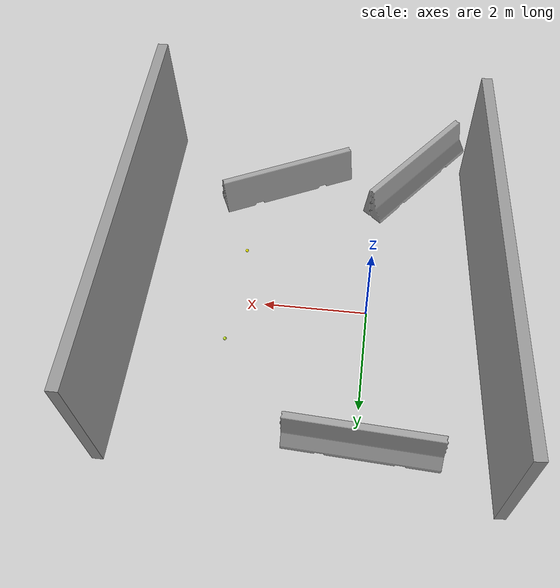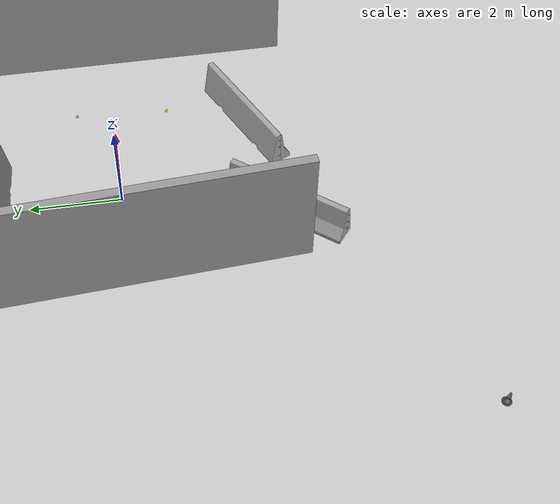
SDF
<sdf version="1.6">
 <world name="default">
  <scene><ambient>0.4 0.4 0.4 1</ambient><background>0.25 0.25 0.25 1</background><shadows>0</shadows></scene>
  <light name="some_light" type="directional">
   <diffuse>0.7 0.7 0.7 0</diffuse>
   <specular>1 1 1 0</specular>
   <direction>-1 -1 -1</direction>
  </light>
  <gravity>0 0 -9.8</gravity>
  <magnetic_field>6e-06 2.3e-05 -4.2e-05</magnetic_field>
  <atmosphere type="adiabatic"/>
  <physics name="default_physics" default="0" type="ode">
   <max_step_size>0.01</max_step_size>
   <real_time_factor>1</real_time_factor>
   <real_time_update_rate>100</real_time_update_rate>
  </physics>
  <spherical_coordinates>
   <surface_model>EARTH_WGS84</surface_model>
   <latitude_deg>0</latitude_deg>
   <longitude_deg>0</longitude_deg>
   <elevation>0</elevation>
   <heading_deg>0</heading_deg>
  </spherical_coordinates>
  <model name="ground_plane">
   <static>1</static>
   <link name="link">
    <collision name="collision">
     <geometry><plane><normal>0 0 1</normal><size>100 100</size></plane></geometry>
     <surface>
      <contact><collide_bitmask>65535</collide_bitmask></contact>
      <friction><ode><mu>100</mu><mu2>50</mu2></ode></friction>
     </surface>
    </collision>
    <visual name="visual">
     <cast_shadows>0</cast_shadows>
     <geometry><plane><normal>0 0 1</normal><size>100 100</size></plane></geometry>
     <material>
      <script><uri>file://media/materials/scripts/gazebo.material</uri><name>Gazebo/Grey</name></script>
     </material>
    </visual>
   </link>
   <pose>0.00724 -0.006209 0 0 -0 0</pose>
  </model>
  <model name="grey_wall">
   <static>1</static>
   <link name="link">
    <pose>0 0 1.4 0 -0 0</pose>
    <collision name="collision"><geometry><box><size>7.5 0.2 2.8</size></box></geometry></collision>
    <visual name="visual">
     <cast_shadows>0</cast_shadows>
     <geometry><box><size>7.5 0.2 2.8</size></box></geometry>
     <material>
      <script>
       <uri>model://grey_wall/materials/scripts</uri>
       <uri>model://grey_wall/materials/textures</uri>
       <name>vrc/grey_wall</name>
      </script>
     </material>
    </visual>
   </link>
   <pose>-2.19668 -0.073112 0 0 0 -1.49736</pose>
  </model>
  <model name="grey_wall_0">
   <static>1</static>
   <link name="link">
    <pose>0 0 1.4 0 -0 0</pose>
    <collision name="collision"><geometry><box><size>7.5 0.2 2.8</size></box></geometry></collision>
    <visual name="visual">
     <cast_shadows>0</cast_shadows>
     <geometry><box><size>7.5 0.2 2.8</size></box></geometry>
     <material>
      <script>
       <uri>model://grey_wall/materials/scripts</uri>
       <uri>model://grey_wall/materials/textures</uri>
       <name>vrc/grey_wall</name>
      </script>
     </material>
    </visual>
   </link>
   <pose>4.45829 -0.385503 0 0 -0 1.57909</pose>
  </model>
  <model name="road_barricade">
   <static>0</static>
   <link name="ball">
    <pose>0 0 0.1 0 -0 0</pose>
    <collision name="collision">
     <geometry><mesh><uri>model://road_barricade/road_barricade.dae</uri><scale>1 1 1</scale></mesh></geometry>
     <surface>
      <bounce><restitution_coefficient>0.2</restitution_coefficient><threshold>100</threshold></bounce>
      <contact><ode><max_vel>10</max_vel></ode></contact>
     </surface>
    </collision>
    <visual name="visual">
     <geometry><mesh><uri>model://road_barricade/road_barricade.dae</uri><scale>1 1 1</scale></mesh></geometry>
    </visual>
    <inertial>
     <mass>200</mass>
     <inertia>
      <ixx>0.075021</ixx>
      <ixy>3e-06</ixy>
      <ixz>-2.9e-05</ixz>
      <iyy>0.89513</iyy>
      <iyz>-0.00631</iyz>
      <izz>0.847779</izz>
     </inertia>
    </inertial>
   </link>
   <pose>-0.099282 2.68149 -0.100006 8.4e-05 3.9e-05 3.08778</pose>
  </model>
  <model name="road_barricade_0">
   <static>0</static>
   <link name="ball">
    <pose>0 0 0.1 0 -0 0</pose>
    <collision name="collision">
     <geometry><mesh><uri>model://road_barricade/road_barricade.dae</uri><scale>1 1 1</scale></mesh></geometry>
     <surface>
      <bounce><restitution_coefficient>0.2</restitution_coefficient><threshold>100</threshold></bounce>
      <contact><ode><max_vel>10</max_vel></ode></contact>
     </surface>
    </collision>
    <visual name="visual">
     <geometry><mesh><uri>model://road_barricade/road_barricade.dae</uri><scale>1 1 1</scale></mesh></geometry>
    </visual>
    <inertial>
     <mass>200</mass>
     <inertia>
      <ixx>0.075021</ixx>
      <ixy>3e-06</ixy>
      <ixz>-2.9e-05</ixz>
      <iyy>0.89513</iyy>
      <iyz>-0.00631</iyz>
      <izz>0.847779</izz>
     </inertia>
    </inertial>
   </link>
   <pose>1.9207 -3.00636 -0.100006 8.4e-05 3.9e-05 0.438687</pose>
  </model>
  <model name="road_barricade_1">
   <static>0</static>
   <link name="ball">
    <pose>0 0 0.1 0 -0 0</pose>
    <collision name="collision">
     <geometry><mesh><uri>model://road_barricade/road_barricade.dae</uri><scale>1 1 1</scale></mesh></geometry>
     <surface>
      <bounce><restitution_coefficient>0.2</restitution_coefficient><threshold>100</threshold></bounce>
      <contact><ode><max_vel>10</max_vel></ode></contact>
     </surface>
    </collision>
    <visual name="visual">
     <geometry><mesh><uri>model://road_barricade/road_barricade.dae</uri><scale>1 1 1</scale></mesh></geometry>
    </visual>
    <inertial>
     <mass>200</mass>
     <inertia>
      <ixx>0.075021</ixx>
      <ixy>3e-06</ixy>
      <ixz>-2.9e-05</ixz>
      <iyy>0.89513</iyy>
      <iyz>-0.00631</iyz>
      <izz>0.847779</izz>
     </inertia>
    </inertial>
   </link>
   <pose>-0.835158 -3.47822 -0.100013 0.00027 -6.3e-05 -2.24541</pose>
  </model>
  <model name="road_barricade_2">
   <static>0</static>
   <link name="ball">
    <pose>0 0 0.1 0 -0 0</pose>
    <collision name="collision">
     <geometry><mesh><uri>model://road_barricade/road_barricade.dae</uri><scale>1 1 1</scale></mesh></geometry>
     <surface>
      <bounce><restitution_coefficient>0.2</restitution_coefficient><threshold>100</threshold></bounce>
      <contact><ode><max_vel>10</max_vel></ode></contact>
     </surface>
    </collision>
    <visual name="visual">
     <geometry><mesh><uri>model://road_barricade/road_barricade.dae</uri><scale>1 1 1</scale></mesh></geometry>
    </visual>
    <inertial>
     <mass>200</mass>
     <inertia>
      <ixx>0.075021</ixx>
      <ixy>3e-06</ixy>
      <ixz>-2.9e-05</ixz>
      <iyy>0.89513</iyy>
      <iyz>-0.00631</iyz>
      <izz>0.847779</izz>
     </inertia>
    </inertial>
   </link>
   <pose>27.1668 24.1436 -0.100006 8.4e-05 3.9e-05 2.31542</pose>
  </model>
  <model name="tennis_green">
   <static>0</static>
   <link name="ball">
    <pose>0 0 1 0 -0 0</pose>
    <collision name="collision">
     <geometry><mesh><uri>model://tennis_green/tennis_green.dae</uri><scale>1 1 1</scale></mesh></geometry>
     <surface>
      <bounce><restitution_coefficient>0.725</restitution_coefficient><threshold>0</threshold></bounce>
      <contact><ode><max_vel>10</max_vel></ode></contact>
     </surface>
    </collision>
    <visual name="visual">
     <geometry><mesh><uri>model://tennis_green/tennis_green.dae</uri><scale>1 1 1</scale></mesh></geometry>
    </visual>
    <inertial>
     <mass>0.055</mass>
     <inertia><ixx>5.19527</ixx><ixy>0</ixy><ixz>0</ixz><iyy>5.15681</iyy><iyz>0</iyz><izz>5.15681</izz></inertia>
    </inertial>
   </link>
   <pose>-13.4777 -13.123 0.561473 -3.09829 1.03201 -2.99384</pose>
  </model>
  <model name="tennis_lime">
   <static>0</static>
   <link name="ball">
    <pose>0 0 1 0 -0 0</pose>
    <collision name="collision">
     <geometry><mesh><uri>model://tennis_lime/tennis_lime.dae</uri><scale>1 1 1</scale></mesh></geometry>
     <surface>
      <bounce><restitution_coefficient>0.725</restitution_coefficient><threshold>0</threshold></bounce>
      <contact><ode><max_vel>10</max_vel></ode></contact>
     </surface>
    </collision>
    <visual name="visual">
     <geometry><mesh><uri>model://tennis_lime/tennis_lime.dae</uri><scale>1 1 1</scale></mesh></geometry>
    </visual>
    <inertial>
     <mass>0.055</mass>
     <inertia><ixx>5.19527</ixx><ixy>0</ixy><ixz>0</ixz><iyy>5.15681</iyy><iyz>0</iyz><izz>5.15681</izz></inertia>
    </inertial>
   </link>
   <pose>2.64312 0.834294 -1.00135 0 -0.002741 0</pose>
  </model>
  <model name="tennis_yellow">
   <static>0</static>
   <link name="ball">
    <pose>0 0 1 0 -0 0</pose>
    <collision name="collision">
     <geometry><mesh><uri>model://tennis_yellow/tennis_yellow.dae</uri><scale>1 1 1</scale></mesh></geometry>
     <surface>
      <bounce><restitution_coefficient>0.725</restitution_coefficient><threshold>0</threshold></bounce>
      <contact><ode><max_vel>10</max_vel></ode></contact>
     </surface>
    </collision>
    <visual name="visual">
     <geometry><mesh><uri>model://tennis_yellow/tennis_yellow.dae</uri><scale>1 1 1</scale></mesh></geometry>
    </visual>
    <inertial>
     <mass>0.055</mass>
     <inertia><ixx>5.19527</ixx><ixy>0</ixy><ixz>0</ixz><iyy>5.15681</iyy><iyz>0</iyz><izz>5.15681</izz></inertia>
    </inertial>
   </link>
   <pose>2.53938 -1.22256 -1.00135 0 -0.002753 0</pose>
  </model>
  <model name="pylon">
   <static>0</static>
   <link name="ball">
    <pose>0 0 0.1 1.5708 -0 0</pose>
    <collision name="collision">
     <geometry><mesh><uri>model://pylon/pylon.dae</uri><scale>1 1 1</scale></mesh></geometry>
    </collision>
    <visual name="visual">
     <geometry><mesh><uri>model://pylon/pylon.dae</uri><scale>1 1 1</scale></mesh></geometry>
    </visual>
    <inertial>
     <mass>4.5</mass>
     <inertia><ixx>1</ixx><ixy>0</ixy><ixz>0</ixz><iyy>1</iyy><iyz>0</iyz><izz>1</izz></inertia>
    </inertial>
   </link>
   <pose>-31.6054 9.69205 0.093145 -1.88535 0.145174 2.23827</pose>
  </model>
  <model name="pylon_0">
   <static>0</static>
   <link name="ball">
    <pose>0 0 0.1 1.5708 -0 0</pose>
    <collision name="collision">
     <geometry><mesh><uri>model://pylon/pylon.dae</uri><scale>1 1 1</scale></mesh></geometry>
    </collision>
    <visual name="visual">
     <geometry><mesh><uri>model://pylon/pylon.dae</uri><scale>1 1 1</scale></mesh></geometry>
    </visual>
    <inertial>
     <mass>4.5</mass>
     <inertia><ixx>1</ixx><ixy>0</ixy><ixz>0</ixz><iyy>1</iyy><iyz>0</iyz><izz>1</izz></inertia>
    </inertial>
   </link>
   <pose>-6.09905 -6.778 0.093482 -1.91441 0.426302 -2.41209</pose>
  </model>
  <model name="golf_ball">
   <static>0</static>
   <link name="ball">
    <pose>0 0 0.1 0 -0 0</pose>
    <collision name="collision">
     <geometry><mesh><uri>model://golf_ball/golf_ball.dae</uri><scale>1 1 1</scale></mesh></geometry>
     <surface>
      <bounce><restitution_coefficient>0.725</restitution_coefficient><threshold>0</threshold></bounce>
      <contact><ode><max_vel>10</max_vel></ode></contact>
     </surface>
    </collision>
    <visual name="visual">
     <geometry><mesh><uri>model://golf_ball/golf_ball.dae</uri><scale>1 1 1</scale></mesh></geometry>
    </visual>
    <inertial>
     <mass>0.055</mass>
     <inertia><ixx>5.19527</ixx><ixy>0</ixy><ixz>0</ixz><iyy>5.15681</iyy><iyz>0</iyz><izz>5.15681</izz></inertia>
    </inertial>
   </link>
   <pose>-95.5126 203.465 0.936226 0.505658 -0.068978 -0.848725</pose>
  </model>
  <model name="golf_ball_0">
   <static>0</static>
   <link name="ball">
    <pose>0 0 0.1 0 -0 0</pose>
    <collision name="collision">
     <geometry><mesh><uri>model://golf_ball/golf_ball.dae</uri><scale>1 1 1</scale></mesh></geometry>
     <surface>
      <bounce><restitution_coefficient>0.725</restitution_coefficient><threshold>0</threshold></bounce>
      <contact><ode><max_vel>10</max_vel></ode></contact>
     </surface>
    </collision>
    <visual name="visual">
     <geometry><mesh><uri>model://golf_ball/golf_ball.dae</uri><scale>1 1 1</scale></mesh></geometry>
    </visual>
    <inertial>
     <mass>0.055</mass>
     <inertia><ixx>5.19527</ixx><ixy>0</ixy><ixz>0</ixz><iyy>5.15681</iyy><iyz>0</iyz><izz>5.15681</izz></inertia>
    </inertial>
   </link>
   <pose>28.9685 -71.4875 0.954893 -0.433872 0.958436 -0.146384</pose>
  </model>
 </world>
</sdf>
